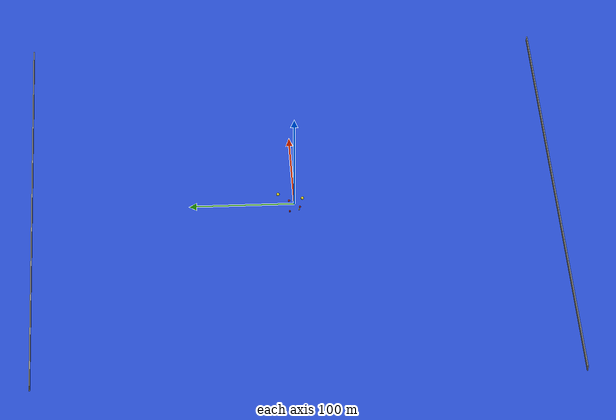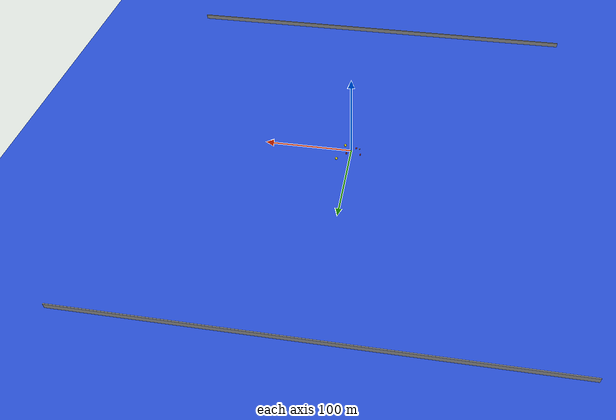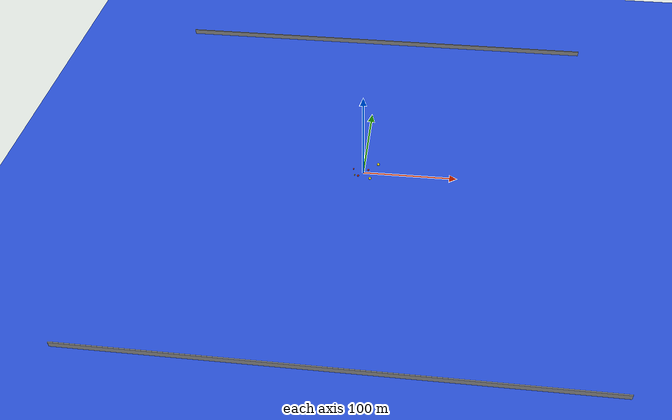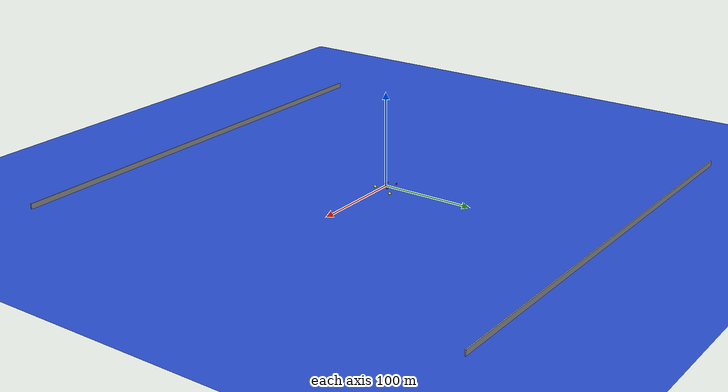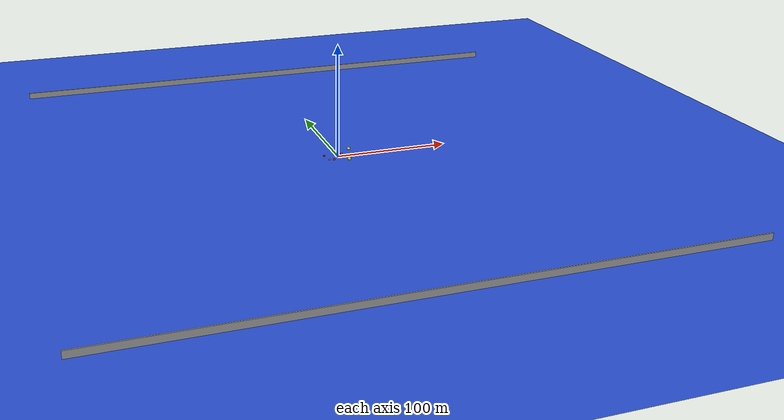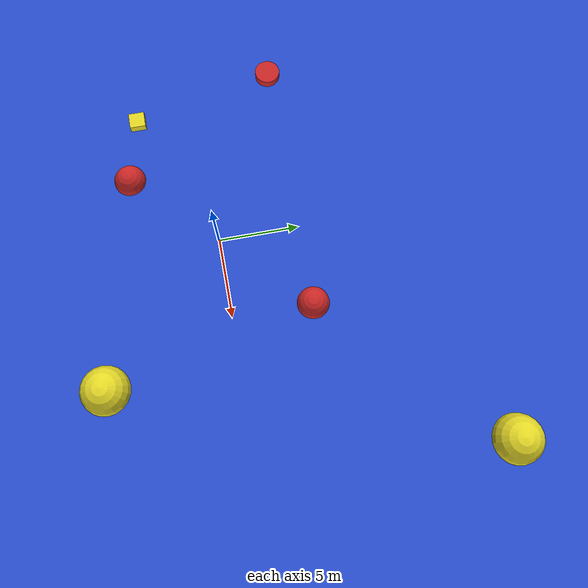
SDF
<?xml version="1.0" ?>
<sdf version="1.6">
  <world name="custom_sea_world">
    <!-- Light source -->
    <include>
      <uri>model://sun</uri>
    </include>

   <!-- Water surface -->
    <model name="water_plane">
      <static>true</static>
      <pose>0 0 0 0 0 0</pose>
      <link name="link">
        <visual name="visual">
          <geometry>
            <plane>
              <normal>0 0 1</normal>
              <size>500 500</size>
            </plane>
          </geometry>
          <material>
            <script>
              <uri>file://media/materials/scripts/gazebo.material</uri>
              <name>Gazebo/Blue</name>
            </script>
          </material>
        </visual>
      </link>
    </model>

    <!-- Obstacles -->
    <model name="buoy">
      <static>true</static>
      <pose>5 5 0 0 0 0</pose>
      <link name="link">
        <visual name="visual">
          <geometry>
            <sphere>
              <radius>1</radius>
            </sphere>
          </geometry>
          <material>
            <script>
              <uri>file://media/materials/scripts/gazebo.material</uri>
              <name>Gazebo/Red</name>
            </script>
          </material>
        </visual>
        <collision name="collision">
          <geometry>
            <sphere>
              <radius>1</radius>
            </sphere>
          </geometry>
        </collision>
      </link>
    </model>

    <!-- Additional obstacles -->
    <model name="buoy2">
      <static>true</static>
      <pose>15 15 0 0 0 0</pose>
      <link name="link">
        <visual name="visual">
          <geometry>
            <sphere>
              <radius>1.5</radius>
            </sphere>
          </geometry>
          <material>
            <script>
              <uri>file://media/materials/scripts/gazebo.material</uri>
              <name>Gazebo/Yellow</name>
            </script>
          </material>
        </visual>
        <collision name="collision">
          <geometry>
            <sphere>
              <radius>1.5</radius>
            </sphere>
          </geometry>
        </collision>
      </link>
    </model>

    <!-- Obstacles -->
    <model name="buoy3">
      <static>true</static>
      <pose>-5 -5 0 0 0 0</pose>
      <link name="link">
        <visual name="visual">
          <geometry>
            <sphere>
              <radius>1</radius>
            </sphere>
          </geometry>
          <material>
            <script>
              <uri>file://media/materials/scripts/gazebo.material</uri>
              <name>Gazebo/Red</name>
            </script>
          </material>
        </visual>
        <collision name="collision">
          <geometry>
            <sphere>
              <radius>1</radius>
            </sphere>
          </geometry>
        </collision>
      </link>
    </model>

    <!-- Additional obstacles -->
    <model name="buoy4">
      <static>true</static>
      <pose>8 -8 0 0 0 0</pose>
      <link name="link">
        <visual name="visual">
          <geometry>
            <sphere>
              <radius>1.5</radius>
            </sphere>
          </geometry>
          <material>
            <script>
              <uri>file://media/materials/scripts/gazebo.material</uri>
              <name>Gazebo/Yellow</name>
            </script>
          </material>
        </visual>
        <collision name="collision">
          <geometry>
            <sphere>
              <radius>1.5</radius>
            </sphere>
          </geometry>
        </collision>
      </link>
    </model>

    <!-- Obstacles -->
    <model name="buoy5">
      <static>true</static>
      <pose>-11 5 0 0 0 0</pose>
      <link name="link">
        <visual name="visual">
          <geometry>
            <cylinder>
              <radius>0.8</radius>
            </cylinder>
          </geometry>
          <material>
            <script>
              <uri>file://media/materials/scripts/gazebo.material</uri>
              <name>Gazebo/Red</name>
            </script>
          </material>
        </visual>
        <collision name="collision">
          <geometry>
            <cylinder>
              <radius>1</radius>
            </cylinder>
          </geometry>
        </collision>
      </link>
    </model>

    <!-- Additional obstacles -->
    <model name="buoy6">
      <static>true</static>
      <pose>-9 -4 0 0 0 0</pose>
      <link name="link">
        <visual name="visual">
          <geometry>
            <box>
              <radius>1.5</radius>
            </box>
          </geometry>
          <material>
            <script>
              <uri>file://media/materials/scripts/gazebo.material</uri>
              <name>Gazebo/Yellow</name>
            </script>
          </material>
        </visual>
        <collision name="collision">
          <geometry>
            <box>
              <radius>1.5</radius>
            </box>
          </geometry>
        </collision>
      </link>
    </model>

    <!-- Walls at the end of the sea -->
    <!-- Adjusted position to be at the ends rather than center -->
    <model name="sea_wall_east">
      <static>true</static>
      <pose>0 250 0 0 0 1.57079632679</pose> <!-- Positioned at the eastern edge -->
      <link name="link">
        <visual name="visual">
          <geometry>
            <box>
              <size>1 500 10</size>
            </box>
          </geometry>
          <material>
            <script>
              <uri>file://media/materials/scripts/gazebo.material</uri>
              <name>Gazebo/Grey</name>
            </script>
          </material>
        </visual>
        <collision name="collision">
          <geometry>
            <box>
              <size>1 500 10</size>
            </box>
          </geometry>
        </collision>
      </link>
    </model>

    <model name="sea_wall_west">
      <static>true</static>
      <pose>0 -250 0 0 0 1.57079632679</pose> <!-- Positioned at the western edge -->
      <link name="link">
        <visual name="visual">
          <geometry>
            <box>
              <size>1 500 10</size>
            </box>
          </geometry>
          <material>
            <script>
              <uri>file://media/materials/scripts/gazebo.material</uri>
              <name>Gazebo/Grey</name>
            </script>
          </material>
        </visual>
        <collision name="collision">
          <geometry>
            <box>
              <size>1 500 10</size>
            </box>
          </geometry>
        </collision>
      </link>
    </model>
  </world>
</sdf>
